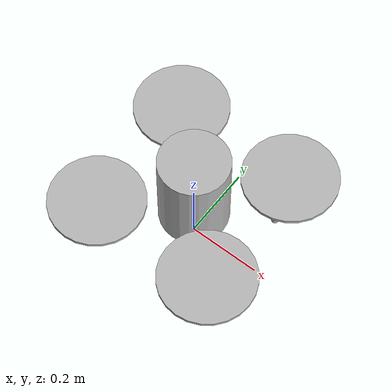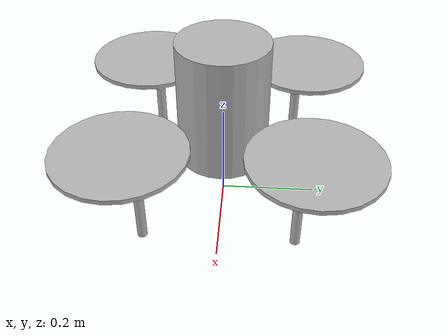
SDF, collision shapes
<?xml version="1.0" encoding="UTF-8"?>
<sdf version='1.9'>
  <model name='ssrc_holybro_x500_hitl'>
    <include merge='true'>
      <uri>model://ssrc_holybro_x500</uri>
    </include>
    <plugin filename="libmavlink_hitl_gazebosim.so" name="mavlink_interface::GazeboMavlinkInterface">
      <robotNamespace/>
      <imuSubTopic>/link/base_link/sensor/imu_sensor/imu</imuSubTopic>
      <gpsSubTopic>/link/base_link/sensor/navsat_sensor/navsat</gpsSubTopic>
      <poseSubTopic>/pose/info</poseSubTopic>
      <mavlink_addr>192.168.202.1</mavlink_addr>
      <mavlink_udp_local_port>14561</mavlink_udp_local_port>
      <mavlink_udp_remote_port>14560</mavlink_udp_remote_port>
      <mavlink_tcp_port>4560</mavlink_tcp_port>
      <secondary_mavlink_addr>192.168.202.65</secondary_mavlink_addr>
      <secondary_mavlink_udp_local_port>14562</secondary_mavlink_udp_local_port>
      <use_tcp>0</use_tcp>
    </plugin>
  </model>
</sdf>

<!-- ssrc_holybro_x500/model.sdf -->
<sdf version='1.9'>
  <model name='holybro_x500'>
    <static>false</static>
    <pose>0 0 0.182 0 0 0</pose>

    <!-- BODY {-->
    <link name='base_link'>
      <gravity>true</gravity>
      <velocity_decay/>

      <inertial>
        <pose>0 0 0 0 0 0</pose>
        <mass>2.3</mass>
        <inertia>
          <ixx>0.052689166666666655</ixx>
          <ixy>0</ixy>
          <ixz>0</ixz>
          <iyy>0.052689166666666655</iyy>
          <iyz>0</iyz>
          <izz>0.1035</izz>
        </inertia>
      </inertial>

      <collision name='base_link_inertia_collision'>
        <pose>0 0 0.05 0 0 0</pose>
        <geometry>
          <cylinder>
            <length>0.259</length>
            <radius>0.094</radius>
          </cylinder>
        </geometry>
        <surface>
          <contact>
            <ode>
              <min_depth>0.001</min_depth>
              <max_vel>0</max_vel>
            </ode>
          </contact>
        </surface>
      </collision>

      <visual name='base_link_inertia_visual'>
        <pose>0 0 0 0 0 0</pose>
        <geometry>
          <mesh>
            <scale>1 1 1</scale>
            <uri>meshes/x500_central_body.dae</uri>
          </mesh>
        </geometry>
      </visual>

      <sensor name="imu_sensor" type="imu">
        <always_on>true</always_on>
        <update_rate>250</update_rate>
      </sensor>

      <sensor name="navsat_sensor" type="gps"/>
    </link>
    <!--} END BODY -->

    <!-- ARMS {-->

    <!-- ARM 0 {-->
    <link name="arm_0_link">
      <pose>0 0 0 0 0 1.5708</pose>
      <inertial>
        <mass>0.02</mass>
        <inertia>
          <ixx>0.000166667</ixx>
          <ixy>0</ixy>
          <ixz>0</ixz>
          <iyy>0.000166667</iyy>
          <iyz>0</iyz>
          <izz>0.000166667</izz>
        </inertia>
      </inertial>
      <visual name='arm_0_visual'>
        <pose>0 0 0 0 0 0</pose>
        <geometry>
          <mesh>
            <scale>1 1 1</scale>
            <uri>meshes/x500_arm.dae</uri>
          </mesh>
        </geometry>
      </visual>
      <visual name='arm_0_motor'>
        <pose>-0.175 -0.175 0.02 0 0 0</pose>
        <geometry>
          <mesh>
            <scale>1 1 1</scale>
            <uri>meshes/x500_motor.dae</uri>
          </mesh>
        </geometry>
      </visual>
      <collision name='arm_0_collision'>
        <pose>-0.155 -0.155 -0.104 0 0 0</pose>
        <geometry>
          <cylinder>
            <length>0.16</length>
            <radius>0.01</radius>
          </cylinder>
        </geometry>
        <surface>
          <contact>
            <ode>
              <min_depth>0.001</min_depth>
              <max_vel>0</max_vel>
            </ode>
          </contact>
        </surface>
      </collision>
    </link>
    <joint name='arm_0_joint' type='fixed'>
      <child>arm_0_link</child>
      <parent>base_link</parent>
    </joint>
    <!--} END ARM 0 -->

    <!-- ARM 1 {-->
    <link name="arm_1_link">
      <pose>0 0 0 0 0 -1.5708</pose>
      <inertial>
        <mass>0.02</mass>
        <inertia>
          <ixx>0.000166667</ixx>
          <ixy>0</ixy>
          <ixz>0</ixz>
          <iyy>0.000166667</iyy>
          <iyz>0</iyz>
          <izz>0.000166667</izz>
        </inertia>
      </inertial>
      <visual name='arm_1_visual'>
        <pose>0 0 0 0 0 0</pose>
        <geometry>
          <mesh>
            <scale>1 1 1</scale>
            <uri>meshes/x500_arm.dae</uri>
          </mesh>
        </geometry>
      </visual>
      <visual name='arm_1_motor'>
        <pose>-0.175 -0.175 0.02 0 0 0</pose>
        <geometry>
          <mesh>
            <scale>1 1 1</scale>
            <uri>meshes/x500_motor.dae</uri>
          </mesh>
        </geometry>
      </visual>
      <collision name='arm_1_collision'>
        <pose>-0.155 -0.155 -0.104 0 0 0</pose>
        <geometry>
          <cylinder>
            <length>0.16</length>
            <radius>0.01</radius>
          </cylinder>
        </geometry>
        <surface>
          <contact>
            <ode>
              <min_depth>0.001</min_depth>
              <max_vel>0</max_vel>
            </ode>
          </contact>
        </surface>
      </collision>
    </link>
    <joint name='arm_1_joint' type='fixed'>
      <child>arm_1_link</child>
      <parent>base_link</parent>
    </joint>
    <!--} END ARM 1 -->

    <!-- ARM 2 {-->
    <link name="arm_2_link">
      <pose>0 0 0 0 0 3.14159</pose>
      <inertial>
        <mass>0.02</mass>
        <inertia>
          <ixx>0.000166667</ixx>
          <ixy>0</ixy>
          <ixz>0</ixz>
          <iyy>0.000166667</iyy>
          <iyz>0</iyz>
          <izz>0.000166667</izz>
        </inertia>
      </inertial>
      <visual name='arm_2_visual'>
        <pose>0 0 0 0 0 0</pose>
        <geometry>
          <mesh>
            <scale>1 1 1</scale>
            <uri>meshes/x500_arm.dae</uri>
          </mesh>
        </geometry>
      </visual>
      <visual name='arm_2_motor'>
        <pose>-0.175 -0.175 0.02 0 0 0</pose>
        <geometry>
          <mesh>
            <scale>1 1 1</scale>
            <uri>meshes/x500_motor.dae</uri>
          </mesh>
        </geometry>
      </visual>
      <collision name='arm_2_collision'>
        <pose>-0.155 -0.155 -0.104 0 0 0</pose>
        <geometry>
          <cylinder>
            <length>0.16</length>
            <radius>0.01</radius>
          </cylinder>
        </geometry>
        <surface>
          <contact>
            <ode>
              <min_depth>0.001</min_depth>
              <max_vel>0</max_vel>
            </ode>
          </contact>
        </surface>
      </collision>
    </link>
    <joint name='arm_2_joint' type='fixed'>
      <child>arm_2_link</child>
      <parent>base_link</parent>
    </joint>
    <!--} END ARM 2 -->

    <!-- ARM 3 {-->
    <link name="arm_3_link">
      <pose>0 0 0 0 0 0</pose>
      <inertial>
        <mass>0.02</mass>
        <inertia>
          <ixx>0.000166667</ixx>
          <ixy>0</ixy>
          <ixz>0</ixz>
          <iyy>0.000166667</iyy>
          <iyz>0</iyz>
          <izz>0.000166667</izz>
        </inertia>
      </inertial>
      <visual name='arm_3_visual'>
        <pose>0 0 0 0 0 0</pose>
        <geometry>
          <mesh>
            <scale>1 1 1</scale>
            <uri>meshes/x500_arm.dae</uri>
          </mesh>
        </geometry>
      </visual>
      <visual name='arm_3_motor'>
        <pose>-0.175 -0.175 0.02 0 0 0</pose>
        <geometry>
          <mesh>
            <scale>1 1 1</scale>
            <uri>meshes/x500_motor.dae</uri>
          </mesh>
        </geometry>
      </visual>
      <collision name='arm_3_collision'>
        <pose>-0.155 -0.155 -0.104 0 0 0</pose>
        <geometry>
          <cylinder>
            <length>0.16</length>
            <radius>0.01</radius>
          </cylinder>
        </geometry>
        <surface>
          <contact>
            <ode>
              <min_depth>0.001</min_depth>
              <max_vel>0</max_vel>
            </ode>
          </contact>
        </surface>
      </collision>
    </link>
    <joint name='arm_3_joint' type='fixed'>
      <child>arm_3_link</child>
      <parent>base_link</parent>
    </joint>
    <!--} END ARM 3 -->
    <!--} END ARMS -->

    <!-- ROTORS {-->
    <link name='rotor_0'>
      <pose>0.175 -0.175 0.041 0 0 0</pose>
      <gravity>true</gravity>
      <self_collide>false</self_collide>
      <velocity_decay/>
      <inertial>
        <pose>0 0 0 0 0 0</pose>
        <mass>0.005</mass>
        <inertia>
          <ixx>0.0001</ixx>
          <ixy>0</ixy>
          <ixz>0</ixz>
          <iyy>0.0001</iyy>
          <iyz>0</iyz>
          <izz>0.0001</izz>
        </inertia>
      </inertial>
      <collision name='rotor_0_collision'>
        <pose>0 0 0 0 0 0</pose>
        <geometry>
          <cylinder>
            <length>0.009</length>
            <radius>0.128</radius>
          </cylinder>
        </geometry>
        <surface>
          <contact>
            <ode>
				 <min_depth>0.001</min_depth>
              <max_vel>0</max_vel>
			</ode>
          </contact>
          <friction>
            <ode/>
          </friction>
        </surface>
      </collision>
      <visual name='rotor_0_visual'>
        <pose>0 0 0 0 0 0</pose>
        <geometry>
          <mesh>
            <scale>1 1 1</scale>
            <uri>meshes/x500_propeller.dae</uri>
          </mesh>
        </geometry>
      </visual>
    </link>
    <joint name='rotor_0_joint' type='revolute'>
      <child>rotor_0</child>
      <parent>base_link</parent>
      <axis>
        <xyz>0 0 1</xyz>
        <limit>
          <lower>-1e+16</lower>
          <upper>1e+16</upper>
        </limit>
        <dynamics>
          <spring_reference>0</spring_reference>
          <spring_stiffness>0</spring_stiffness>
        </dynamics>
      </axis>
    </joint>
    <link name='rotor_1'>
      <gravity>true</gravity>
      <self_collide>false</self_collide>
      <velocity_decay/>
      <pose>-0.175 0.175 0.041 0 0 0</pose>
      <inertial>
        <pose>0 0 0 0 0 0</pose>
        <mass>0.005</mass>
        <inertia>
          <ixx>0.0001</ixx>
          <ixy>0</ixy>
          <ixz>0</ixz>
          <iyy>0.0001</iyy>
          <iyz>0</iyz>
          <izz>0.0001</izz>
        </inertia>
      </inertial>
      <collision name='rotor_1_collision'>
        <pose>0 0 0 0 0 0</pose>
        <geometry>
          <cylinder>
            <length>0.009</length>
            <radius>0.128</radius>
          </cylinder>
        </geometry>
        <surface>
          <contact>
            <ode>
				 <min_depth>0.001</min_depth>
              <max_vel>0</max_vel>
			</ode>
          </contact>
          <friction>
            <ode/>
          </friction>
        </surface>
      </collision>
      <visual name='rotor_1_visual'>
        <pose>0 0 0 0 0 0</pose>
        <geometry>
          <mesh>
            <scale>1 1 1</scale>
            <uri>meshes/x500_propeller.dae</uri>
          </mesh>
        </geometry>
      </visual>
    </link>
    <joint name='rotor_1_joint' type='revolute'>
      <child>rotor_1</child>
      <parent>base_link</parent>
      <axis>
        <xyz>0 0 1</xyz>
        <limit>
          <lower>-1e+16</lower>
          <upper>1e+16</upper>
        </limit>
        <dynamics>
          <spring_reference>0</spring_reference>
          <spring_stiffness>0</spring_stiffness>
        </dynamics>
      </axis>
    </joint>
    <link name='rotor_2'>
      <gravity>true</gravity>
      <self_collide>false</self_collide>
      <velocity_decay/>
      <pose>0.175 0.175 0.041 0 0 0</pose>
      <inertial>
        <pose>0 0 0 0 0 0</pose>
        <mass>0.005</mass>
        <inertia>
          <ixx>0.0001</ixx>
          <ixy>0</ixy>
          <ixz>0</ixz>
          <iyy>0.0001</iyy>
          <iyz>0</iyz>
          <izz>0.0001</izz>
        </inertia>
      </inertial>
      <collision name='rotor_2_collision'>
        <pose>0 0 0 0 0 0</pose>
        <geometry>
          <cylinder>
            <length>0.009</length>
            <radius>0.128</radius>
          </cylinder>
        </geometry>
        <surface>
          <contact>
            <ode>
				 <min_depth>0.001</min_depth>
              <max_vel>0</max_vel>
			</ode>
          </contact>
          <friction>
            <ode/>
          </friction>
        </surface>
      </collision>
      <visual name='rotor_2_visual'>
        <pose>0 0 0 0 0 0</pose>
        <geometry>
          <mesh>
            <scale>-1 1 1</scale>
            <uri>meshes/x500_propeller.dae</uri>
          </mesh>
        </geometry>
      </visual>
    </link>
    <joint name='rotor_2_joint' type='revolute'>
      <child>rotor_2</child>
      <parent>base_link</parent>
      <axis>
        <xyz>0 0 1</xyz>
        <limit>
          <lower>-1e+16</lower>
          <upper>1e+16</upper>
        </limit>
        <dynamics>
          <spring_reference>0</spring_reference>
          <spring_stiffness>0</spring_stiffness>
        </dynamics>
      </axis>
    </joint>
    <link name='rotor_3'>
      <gravity>true</gravity>
      <self_collide>false</self_collide>
      <velocity_decay/>
      <pose>-0.175 -0.175 0.041 0 0 0</pose>
      <inertial>
        <pose>0 0 0 0 0 0</pose>
        <mass>0.005</mass>
        <inertia>
          <ixx>0.0001</ixx>
          <ixy>0</ixy>
          <ixz>0</ixz>
          <iyy>0.0001</iyy>
          <iyz>0</iyz>
          <izz>0.0001</izz>
        </inertia>
      </inertial>
      <collision name='rotor_3_collision'>
        <pose>0 0 0 0 0 0</pose>
        <geometry>
          <cylinder>
            <length>0.009</length>
            <radius>0.128</radius>
          </cylinder>
        </geometry>
        <surface>
          <contact>
            <ode>
				 <min_depth>0.001</min_depth>
              <max_vel>0</max_vel>
			</ode>
          </contact>
          <friction>
            <ode/>
          </friction>
        </surface>
      </collision>
      <visual name='rotor_3_visual'>
        <pose>0 0 0 0 0 0</pose>
        <geometry>
          <mesh>
            <scale>-1 1 1</scale>
            <uri>meshes/x500_propeller.dae</uri>
          </mesh>
        </geometry>
      </visual>
    </link>
    <joint name='rotor_3_joint' type='revolute'>
      <child>rotor_3</child>
      <parent>base_link</parent>
      <axis>
        <xyz>0 0 1</xyz>
        <limit>
          <lower>-1e+16</lower>
          <upper>1e+16</upper>
        </limit>
        <dynamics>
          <spring_reference>0</spring_reference>
          <spring_stiffness>0</spring_stiffness>
        </dynamics>
      </axis>
    </joint>
    <!--} END ROTORS -->

    <!-- PLUGINS {-->
    <!-- MOTOR PLUGINS {-->
    <plugin filename="gz-sim-multicopter-motor-model-system" name="gz::sim::systems::MulticopterMotorModel">
      <jointName>rotor_0_joint</jointName>
      <linkName>rotor_0</linkName>
      <turningDirection>ccw</turningDirection>
      <timeConstantUp>0.0125</timeConstantUp>
      <timeConstantDown>0.025</timeConstantDown>
      <maxRotVelocity>1000.0</maxRotVelocity>
      <motorConstant>8.54858e-06</motorConstant>
      <momentConstant>0.016</momentConstant>
      <commandSubTopic>command/motor_speed</commandSubTopic>
      <motorNumber>0</motorNumber>
      <rotorDragCoefficient>8.06428e-05</rotorDragCoefficient>
      <rollingMomentCoefficient>1e-06</rollingMomentCoefficient>
      <rotorVelocitySlowdownSim>10</rotorVelocitySlowdownSim>
      <motorType>velocity</motorType>
    </plugin>
    <plugin filename="gz-sim-multicopter-motor-model-system" name="gz::sim::systems::MulticopterMotorModel">
      <jointName>rotor_1_joint</jointName>
      <linkName>rotor_1</linkName>
      <turningDirection>ccw</turningDirection>
      <timeConstantUp>0.0125</timeConstantUp>
      <timeConstantDown>0.025</timeConstantDown>
      <maxRotVelocity>1000.0</maxRotVelocity>
      <motorConstant>8.54858e-06</motorConstant>
      <momentConstant>0.016</momentConstant>
      <commandSubTopic>command/motor_speed</commandSubTopic>
      <motorNumber>1</motorNumber>
      <rotorDragCoefficient>8.06428e-05</rotorDragCoefficient>
      <rollingMomentCoefficient>1e-06</rollingMomentCoefficient>
      <rotorVelocitySlowdownSim>10</rotorVelocitySlowdownSim>
      <motorType>velocity</motorType>
    </plugin>
    <plugin filename="gz-sim-multicopter-motor-model-system" name="gz::sim::systems::MulticopterMotorModel">
      <jointName>rotor_2_joint</jointName>
      <linkName>rotor_2</linkName>
      <turningDirection>cw</turningDirection>
      <timeConstantUp>0.0125</timeConstantUp>
      <timeConstantDown>0.025</timeConstantDown>
      <maxRotVelocity>1000.0</maxRotVelocity>
      <motorConstant>8.54858e-06</motorConstant>
      <momentConstant>0.016</momentConstant>
      <commandSubTopic>command/motor_speed</commandSubTopic>
      <motorNumber>2</motorNumber>
      <rotorDragCoefficient>8.06428e-05</rotorDragCoefficient>
      <rollingMomentCoefficient>1e-06</rollingMomentCoefficient>
      <rotorVelocitySlowdownSim>10</rotorVelocitySlowdownSim>
      <motorType>velocity</motorType>
    </plugin>
    <plugin filename="gz-sim-multicopter-motor-model-system" name="gz::sim::systems::MulticopterMotorModel">
      <jointName>rotor_3_joint</jointName>
      <linkName>rotor_3</linkName>
      <turningDirection>cw</turningDirection>
      <timeConstantUp>0.0125</timeConstantUp>
      <timeConstantDown>0.025</timeConstantDown>
      <maxRotVelocity>1000.0</maxRotVelocity>
      <motorConstant>8.54858e-06</motorConstant>
      <momentConstant>0.016</momentConstant>
      <commandSubTopic>command/motor_speed</commandSubTopic>
      <motorNumber>3</motorNumber>
      <rotorDragCoefficient>8.06428e-05</rotorDragCoefficient>
      <rollingMomentCoefficient>1e-06</rollingMomentCoefficient>
      <rotorVelocitySlowdownSim>10</rotorVelocitySlowdownSim>
      <motorType>velocity</motorType>
    </plugin>
    <!--} END MOTOR PLUGINS -->

    <plugin
        filename="gz-sim-pose-publisher-system"
        name="gz::sim::systems::PosePublisher">
      <publish_link_pose>true</publish_link_pose>
      <publish_nested_model_pose>true</publish_nested_model_pose>
      <use_pose_vector_msg>true</use_pose_vector_msg>
      <static_publisher>true</static_publisher>
      <static_update_frequency>1</static_update_frequency>
    </plugin>

    <plugin
        filename="gz-sim-odometry-publisher-system"
        name="gz::sim::systems::OdometryPublisher">
      <dimensions>3</dimensions>
    </plugin>

    <!--} END PLUGINS -->
  </model>
</sdf>
